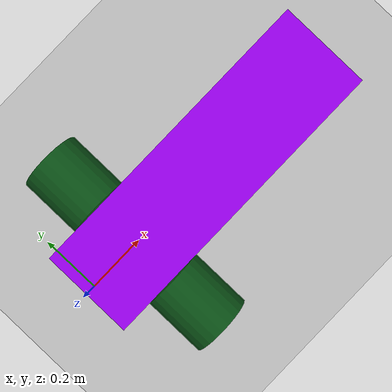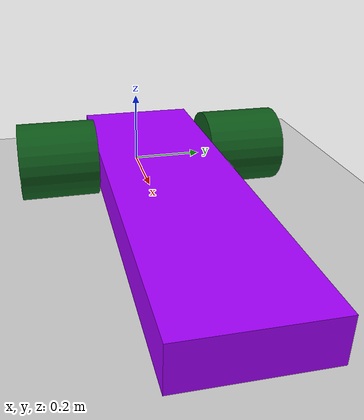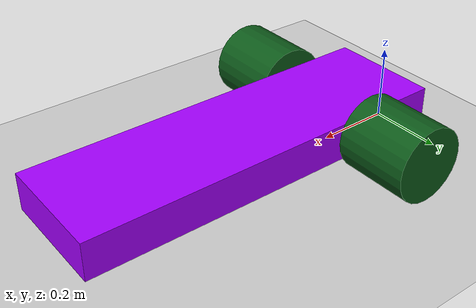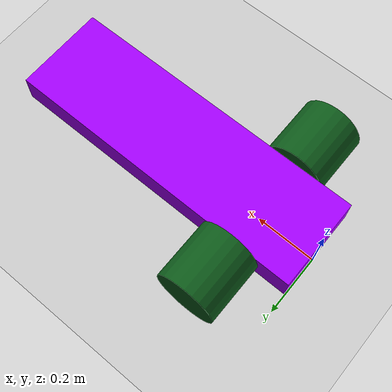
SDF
<?xml version="1.0" ?>
<sdf version="1.10">
    <world name="car_world">
        <physics name="1ms" type="ignored">
            <max_step_size>0.001</max_step_size>
            <real_time_factor>1.0</real_time_factor>
        </physics>

        <plugin
            filename="gz-sim-physics-system"
            name="gz::sim::systems::Physics">
        </plugin>

        <plugin
            filename="gz-sim-user-commands-system"
            name="gz::sim::systems::UserCommands">
        </plugin>

        <plugin
            filename="gz-sim-scene-broadcaster-system"
            name="gz::sim::systems::SceneBroadcaster">
        </plugin>

        <!-- Moving Forward-->
        <plugin filename="gz-sim-triggered-publisher-system"
                name="gz::sim::systems::TriggeredPublisher">
            <input type="gz.msgs.Int32" topic="/keyboard/keypress">
                <match field="data">16777235</match>
            </input>
            <output type="gz.msgs.Twist" topic="/cmd_vel">
                linear: {x: 1.5}, angular: {z: 0.0}
            </output>
        </plugin>

        <!-- Moving Backward-->
        <plugin filename="gz-sim-triggered-publisher-system"
                name="gz::sim::systems::TriggeredPublisher">
            <input type="gz.msgs.Int32" topic="/keyboard/keypress">
                <match field="data">16777237</match>
            </input>
            <output type="gz.msgs.Twist" topic="/cmd_vel">
                linear: {x: -1.5}, angular: {z: 0.0}
            </output>
        </plugin>

        <!-- Rotation Left-->
        <plugin filename="gz-sim-triggered-publisher-system"
                name="gz::sim::systems::TriggeredPublisher">
            <input type="gz.msgs.Int32" topic="/keyboard/keypress">
                <match field="data">16777234</match>
            </input>
            <output type="gz.msgs.Twist" topic="/cmd_vel">
                linear: {x: 0.0}, angular: {z: 0.8}
            </output>
        </plugin>

        <!-- Rotation Right-->
        <plugin filename="gz-sim-triggered-publisher-system"
                name="gz::sim::systems::TriggeredPublisher">
            <input type="gz.msgs.Int32" topic="/keyboard/keypress">
                <match field="data">16777236</match>
            </input>
            <output type="gz.msgs.Twist" topic="/cmd_vel">
                linear: {x: 0.0}, angular: {z: -0.8}
            </output>
        </plugin>

        <!-- Sttop-->
        <plugin filename="gz-sim-triggered-publisher-system"
                name="gz::sim::systems::TriggeredPublisher">
            <input type="gz.msgs.Int32" topic="/keyboard/keypress">
                <match field="data">65</match>
            </input>
            <output type="gz.msgs.Twist" topic="/cmd_vel">
                linear: {x: 0.0}, angular: {z: 0.0}
            </output>
        </plugin>

        <light type="directional" name="sun">
            <cast_shadows>true</cast_shadows>
            <pose>0 0 10 0 0 0</pose>
            <diffuse>0.8 0.8 0.8 1</diffuse>
            <specular>0.2 0.2 0.2 1</specular>
            <attenuation>
                <range>1000</range>
                <constant>0.9</constant>
                <linear>0.01</linear>
                <quadratic>0.001</quadratic>
            </attenuation>
            <direction>-0.5 0.1 -0.9</direction>
        </light>

        <model name="ground_plane">
            <static>true</static>
            <link name="link">
                <collision name="collision">
                <geometry>
                    <plane>
                    <normal>0 0 1</normal>
                    </plane>
                </geometry>
                </collision>
                <visual name="visual">
                <geometry>
                    <plane>
                    <normal>0 0 1</normal>
                    <size>100 100</size>
                    </plane>
                </geometry>
                <material>
                    <ambient>0.8 0.8 0.8 1</ambient>
                    <diffuse>0.8 0.8 0.8 1</diffuse>
                    <specular>0.8 0.8 0.8 1</specular>
                </material>
                </visual>
            </link>
        </model>

        <model name='vehicle_blue' canonical_link='chassis'>
            <plugin
                filename="gz-sim-diff-drive-system"
                name="gz::sim::systems::DiffDrive">
                <left_joint>left_wheel_joint</left_joint>
                <right_joint>right_wheel_joint</right_joint>
                <wheel_separation>0.5</wheel_separation>
                <wheel_radius>0.1</wheel_radius>
                <odom_publish_frequency>50</odom_publish_frequency>
                <topic>cmd_vel</topic>
            </plugin>

            <pose relative_to='world'>0 0 0 0 0 0</pose>
            <link name='chassis'>
                <pose relative_to='__model__'>0.5 0 0.1 0 0 0</pose>
                <inertial> <!--inertial properties of the link mass, inertia matix-->
                    <mass>3.14395</mass>
                    <inertia>
                        <ixx>0.095329</ixx>
                        <ixy>0</ixy>
                        <ixz>0</ixz>
                        <iyy>0.381317</iyy>
                        <iyz>0</iyz>
                        <izz>0.476646</izz>
                    </inertia>
                </inertial>
                <visual name='visual'>
                    <geometry>
                        <box>
                            <size>1.0 0.3 0.1</size>
                        </box>
                    </geometry>
                    <!--let's add color to our link-->
                    <material>
                        <ambient>0.65 0.0 1.0 1</ambient>
                        <diffuse>0.65 0.0 1.0 1</diffuse>
                        <specular>0.65 0.0 1.0 1</specular>
                    </material>
                </visual>
                <collision name='collision'>
                    <geometry>
                        <box>
                            <size>1.0 0.3 0.1</size>
                        </box>
                    </geometry>
                </collision>
            </link>

            <link name='left_wheel'>
                <pose relative_to="chassis">-0.3 0.25 0 -1.5707 0 0</pose>
                <inertial>
                    <mass>1</mass>
                    <inertia>
                        <ixx>0.043333</ixx>
                        <ixy>0</ixy>
                        <ixz>0</ixz>
                        <iyy>0.043333</iyy>
                        <iyz>0</iyz>
                        <izz>0.08</izz>
                    </inertia>
                </inertial>
                <visual name='visual'>
                    <geometry>
                        <cylinder>
                            <radius>0.1</radius>
                            <length>0.2</length>
                        </cylinder>
                    </geometry>
                    <material>
                        <ambient>0.05 0.35 0.1 1</ambient>
                        <diffuse>0.05 0.35 0.1 1</diffuse>
                        <specular>0.05 0.35 0.1 1</specular>
                    </material>
                </visual>
                <collision name='collision'>
                    <geometry>
                        <cylinder>
                            <radius>0.1</radius>
                            <length>0.2</length>
                        </cylinder>
                    </geometry>
                </collision>
            </link>

            <link name='right_wheel'>
                <pose relative_to="chassis">-0.3 -0.25 0 -1.5707 0 0</pose>
                <inertial>
                    <mass>1</mass>
                    <inertia>
                        <ixx>0.043333</ixx>
                        <ixy>0</ixy>
                        <ixz>0</ixz>
                        <iyy>0.043333</iyy>
                        <iyz>0</iyz>
                        <izz>0.08</izz>
                    </inertia>
                </inertial>
                <visual name='visual'>
                    <geometry>
                        <cylinder>
                            <radius>0.1</radius>
                            <length>0.2</length>
                        </cylinder>
                    </geometry>
                    <material>
                        <ambient>0.05 0.35 0.1 1</ambient>
                        <diffuse>0.05 0.35 0.1 1</diffuse>
                        <specular>0.05 0.35 0.1 1</specular>
                    </material>
                </visual>
                <collision name='collision'>
                    <geometry>
                        <cylinder>
                            <radius>0.1</radius>
                            <length>0.2</length>
                        </cylinder>
                    </geometry>
                </collision>
            </link>

            <frame name="caster_frame" attached_to='chassis'>
                <pose>0.4 0 -0.05 0 0 0</pose>
            </frame>

            <link name='caster'>
                <pose relative_to='caster_frame'/>
                <inertial>
                    <mass>1</mass>
                    <inertia>
                        <ixx>0.016</ixx>
                        <ixy>0</ixy>
                        <ixz>0</ixz>
                        <iyy>0.016</iyy>
                        <iyz>0</iyz>
                        <izz>0.016</izz>
                    </inertia>
                </inertial>
                <visual name='visual'>
                    <geometry>
                        <sphere>
                            <radius>0.05</radius>
                        </sphere>
                    </geometry>
                    <material>
                        <ambient>0.0 1 0.0 1</ambient>
                        <diffuse>0.0 1 0.0 1</diffuse>
                        <specular>0.0 1 0.0 1</specular>
                    </material>
                </visual>
                <collision name='collision'>
                    <geometry>
                        <sphere>
                            <radius>0.05</radius>
                        </sphere>
                    </geometry>
                </collision>
            </link>

            <joint name='left_wheel_joint' type='revolute'>
                <pose relative_to='left_wheel'/>
                <parent>chassis</parent>
                <child>left_wheel</child>
                <axis>
                    <xyz expressed_in='__model__'>0 1 0</xyz> <!--can be defined as any frame or even arbitrary frames-->
                    <limit>
                        <lower>-1.79769e+308</lower>    <!--negative infinity-->
                        <upper>1.79769e+308</upper>     <!--positive infinity-->
                    </limit>
                </axis>
            </joint>

            <joint name='right_wheel_joint' type='revolute'>
                <pose relative_to='right_wheel'/>
                <parent>chassis</parent>
                <child>right_wheel</child>
                <axis>
                    <xyz expressed_in='__model__'>0 1 0</xyz>
                    <limit>
                        <lower>-1.79769e+308</lower>    <!--negative infinity-->
                        <upper>1.79769e+308</upper>     <!--positive infinity-->
                    </limit>
                </axis>
            </joint>

            <joint name='caster_wheel' type='ball'>
                <parent>chassis</parent>
                <child>caster</child>
            </joint>
        </model>
    </world>
</sdf>
